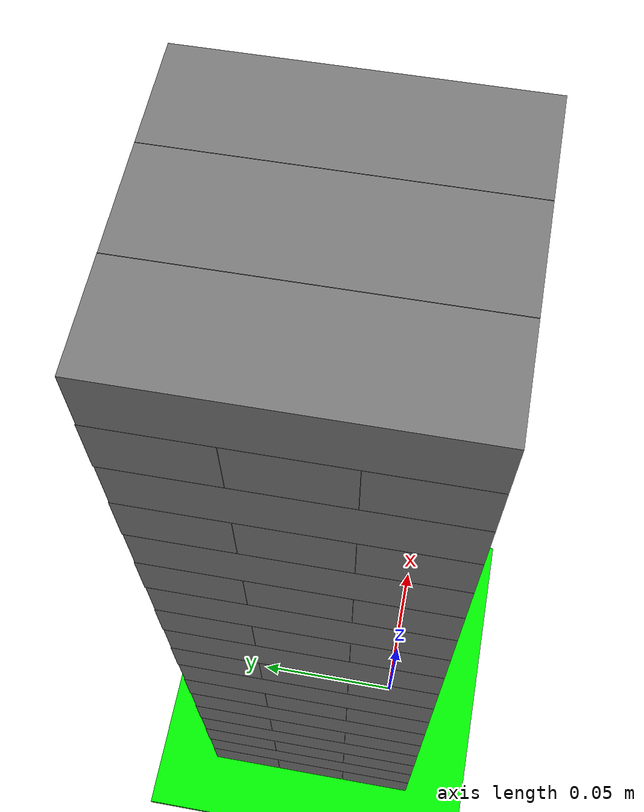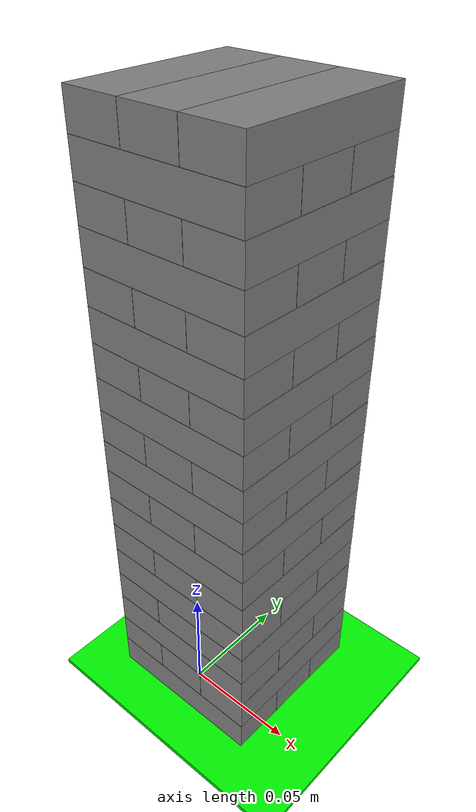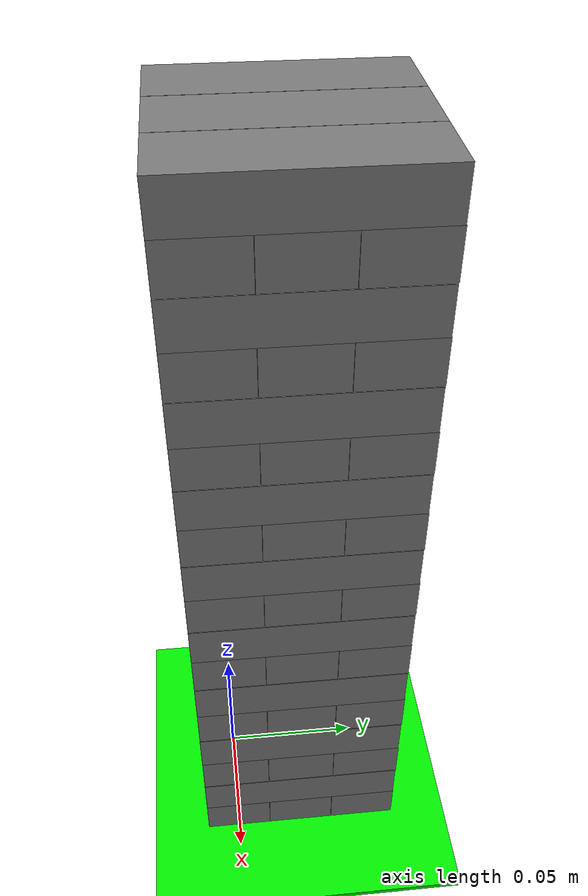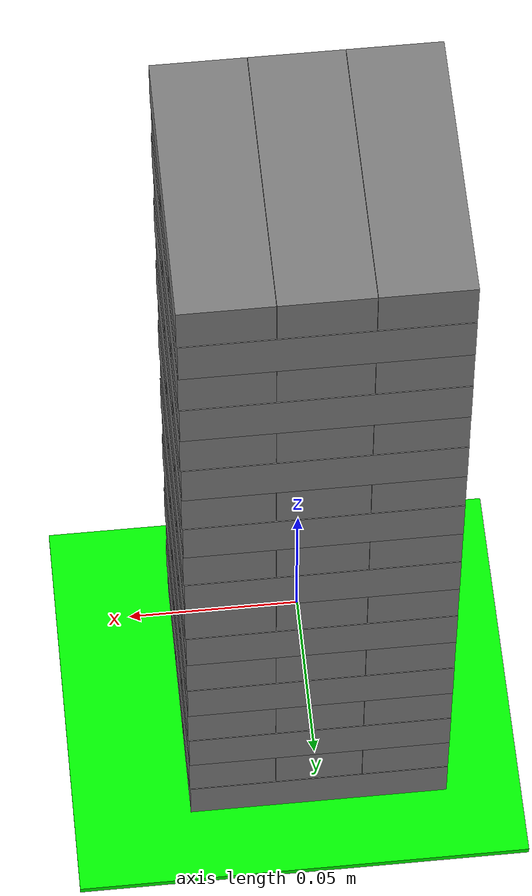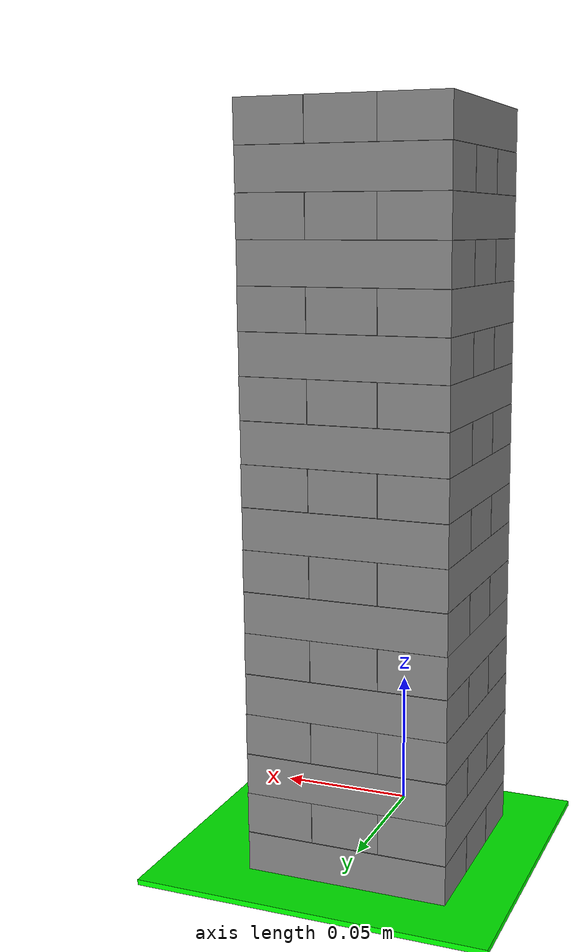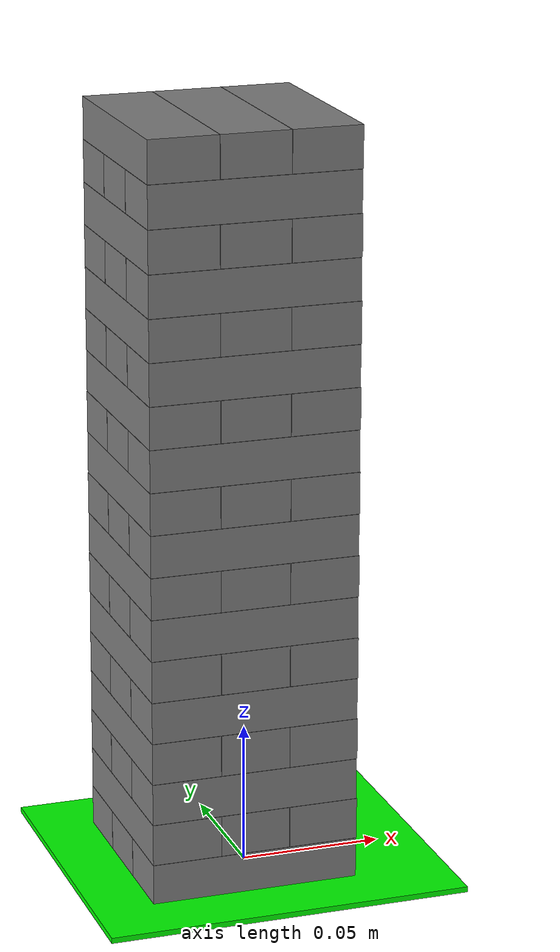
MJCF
<?xml version="1.0" ?>
<mujoco>
    <size njmax="8000" nconmax="4000"/>
    <worldbody>

    	<!--Layer 1 0.075 0.025 0.015-->
        <body name="box_0_0" pos="0 0 0">
            <joint type='free'/>
            <geom size="0.0375 0.0125 0.0075" type="box"/>
        </body>

        <body name="box_0_1" pos="0 0.0251 0">
            <joint type='free'/>
            <geom size="0.0375 0.0125 0.0075" type="box"/>
        </body>

        <body name="box_0_2" pos="0 0.0502 0">
            <joint type='free'/>
            <geom size="0.0375 0.0125 0.0075" type="box"/>
        </body>

        <!--Layer 2-->
        <body name="box_1_0" pos="-0.025 0.025 0.0151">
            <joint type='free'/>
            <geom size="0.0375 0.0125 0.0075" euler="0 0 90" type="box"/>
        </body>

        <body name="box_1_1" pos="0.0001 0.025 0.0151">
            <joint type='free'/>
            <geom size="0.0375 0.0125 0.0075" euler="0 0 90" type="box"/>
        </body>

        <body name="box_1_2" pos="0.0252 0.025 0.0151">
            <joint type='free'/>
            <geom size="0.0375 0.0125 0.0075" euler="0 0 90" type="box"/>
        </body>

        <!--Layer 3-->
        <body name="box_2_0" pos="0 0 0.0302">
            <joint type='free'/>
            <geom size="0.0375 0.0125 0.0075" type="box"/>
        </body>

        <body name="box_2_1" pos="0 0.0251 0.0302">
            <joint type='free'/>
            <geom size="0.0375 0.0125 0.0075" type="box"/>
        </body>

        <body name="box_2_2" pos="0 0.0502 0.0302">
            <joint type='free'/>
            <geom size="0.0375 0.0125 0.0075" type="box"/>
        </body>

        <!--Layer 4-->
        <body name="box_3_0" pos="-0.025 0.025 0.0453">
            <joint type='free'/>
            <geom size="0.0375 0.0125 0.0075" euler="0 0 90" type="box"/>
        </body>

        <body name="box_3_1" pos="0.0001 0.025 0.0453">
            <joint type='free'/>
            <geom size="0.0375 0.0125 0.0075" euler="0 0 90" type="box"/>
        </body>

        <body name="box_3_2" pos="0.0252 0.025 0.0453">
            <joint type='free'/>
            <geom size="0.0375 0.0125 0.0075" euler="0 0 90" type="box"/>
        </body>

        <!--Layer 5-->
        <body name="box_4_0" pos="0 0 0.0604">
            <joint type='free'/>
            <geom size="0.0375 0.0125 0.0075" type="box"/>
        </body>

        <body name="box_4_1" pos="0 0.0251 0.0604">
            <joint type='free'/>
            <geom size="0.0375 0.0125 0.0075" type="box"/>
        </body>

        <body name="box_4_2" pos="0 0.0502 0.0604">
            <joint type='free'/>
            <geom size="0.0375 0.0125 0.0075" type="box"/>
        </body>

        <!--Layer 6-->
        <body name="box_5_0" pos="-0.025 0.025 0.0755">
            <joint type='free'/>
            <geom size="0.0375 0.0125 0.0075" euler="0 0 90" type="box"/>
        </body>

        <body name="box_5_1" pos="0.0001 0.025 0.0755">
            <joint type='free'/>
            <geom size="0.0375 0.0125 0.0075" euler="0 0 90" type="box"/>
        </body>

        <body name="box_5_2" pos="0.0252 0.025 0.0755">
            <joint type='free'/>
            <geom size="0.0375 0.0125 0.0075" euler="0 0 90" type="box"/>
        </body>

        <!--Layer 7-->
        <body name="box_6_0" pos="0 0 0.0906">
            <joint type='free'/>
            <geom size="0.0375 0.0125 0.0075" type="box"/>
        </body>

        <body name="box_6_1" pos="0 0.0251 0.0906">
            <joint type='free'/>
            <geom size="0.0375 0.0125 0.0075" type="box"/>
        </body>

        <body name="box_6_2" pos="0 0.0502 0.0906">
            <joint type='free'/>
            <geom size="0.0375 0.0125 0.0075" type="box"/>
        </body>

        <!--Layer 8-->
        <body name="box_7_0" pos="-0.025 0.025 0.1057">
            <joint type='free'/>
            <geom size="0.0375 0.0125 0.0075" euler="0 0 90" type="box"/>
        </body>

        <body name="box_7_1" pos="0.0001 0.025 0.1057">
            <joint type='free'/>
            <geom size="0.0375 0.0125 0.0075" euler="0 0 90" type="box"/>
        </body>

        <body name="box_7_2" pos="0.0252 0.025 0.1057">
            <joint type='free'/>
            <geom size="0.0375 0.0125 0.0075" euler="0 0 90" type="box"/>
        </body>

        <!--Layer 9-->
        <body name="box_8_0" pos="0 0 0.1208">
            <joint type='free'/>
            <geom size="0.0375 0.0125 0.0075" type="box"/>
        </body>

        <body name="box_8_1" pos="0 0.0251 0.1208">
            <joint type='free'/>
            <geom size="0.0375 0.0125 0.0075" type="box"/>
        </body>

        <body name="box_8_2" pos="0 0.0502 0.1208">
            <joint type='free'/>
            <geom size="0.0375 0.0125 0.0075" type="box"/>
        </body>

        <!--Layer 10-->
        <body name="box_9_0" pos="-0.025 0.025 0.1359">
            <joint type='free'/>
            <geom size="0.0375 0.0125 0.0075" euler="0 0 90" type="box"/>
        </body>

        <body name="box_9_1" pos="0.0001 0.025 0.1359">
            <joint type='free'/>
            <geom size="0.0375 0.0125 0.0075" euler="0 0 90" type="box"/>
        </body>

        <body name="box_9_2" pos="0.0252 0.025 0.1359">
            <joint type='free'/>
            <geom size="0.0375 0.0125 0.0075" euler="0 0 90" type="box"/>
        </body>

        <!--Layer 11-->
        <body name="box_10_0" pos="0 0 0.151">
            <joint type='free'/>
            <geom size="0.0375 0.0125 0.0075" type="box"/>
        </body>

        <body name="box_10_1" pos="0 0.0251 0.151">
            <joint type='free'/>
            <geom size="0.0375 0.0125 0.0075" type="box"/>
        </body>

        <body name="box_10_2" pos="0 0.0502 0.151">
            <joint type='free'/>
            <geom size="0.0375 0.0125 0.0075" type="box"/>
        </body>

        <!--Layer 12-->
        <body name="box_11_0" pos="-0.025 0.025 0.1661">
            <joint type='free'/>
            <geom size="0.0375 0.0125 0.0075" euler="0 0 90" type="box"/>
        </body>

        <body name="box_11_1" pos="0.0001 0.025 0.1661">
            <joint type='free'/>
            <geom size="0.0375 0.0125 0.0075" euler="0 0 90" type="box"/>
        </body>

        <body name="box_11_2" pos="0.0252 0.025 0.1661">
            <joint type='free'/>
            <geom size="0.0375 0.0125 0.0075" euler="0 0 90" type="box"/>
        </body>

        <!--Layer 13-->
        <body name="box_12_0" pos="0 0 0.1812">
            <joint type='free'/>
            <geom size="0.0375 0.0125 0.0075" type="box"/>
        </body>

        <body name="box_12_1" pos="0 0.0251 0.1812">
            <joint type='free'/>
            <geom size="0.0375 0.0125 0.0075" type="box"/>
        </body>

        <body name="box_12_2" pos="0 0.0502 0.1812">
            <joint type='free'/>
            <geom size="0.0375 0.0125 0.0075" type="box"/>
        </body>

        <!--Layer 14-->
        <body name="box_13_0" pos="-0.025 0.025 0.1963">
            <joint type='free'/>
            <geom size="0.0375 0.0125 0.0075" euler="0 0 90" type="box"/>
        </body>

        <body name="box_13_1" pos="0.0001 0.025 0.1963">
            <joint type='free'/>
            <geom size="0.0375 0.0125 0.0075" euler="0 0 90" type="box"/>
        </body>

        <body name="box_13_2" pos="0.0252 0.025 0.1963">
            <joint type='free'/>
            <geom size="0.0375 0.0125 0.0075" euler="0 0 90" type="box"/>
        </body>

        <!--Layer 15-->
        <body name="box_14_0" pos="0 0 0.2114">
            <joint type='free'/>
            <geom size="0.0375 0.0125 0.0075" type="box"/>
        </body>

        <body name="box_14_1" pos="0 0.0251 0.2114">
            <joint type='free'/>
            <geom size="0.0375 0.0125 0.0075" type="box"/>
        </body>

        <body name="box_14_2" pos="0 0.0502 0.2114">
            <joint type='free'/>
            <geom size="0.0375 0.0125 0.0075" type="box"/>
        </body>

        <!--Layer 16-->
        <body name="box_15_0" pos="-0.025 0.025 0.2265">
            <joint type='free'/>
            <geom size="0.0375 0.0125 0.0075" euler="0 0 90" type="box"/>
        </body>

        <body name="box_15_1" pos="0.0001 0.025 0.2265">
            <joint type='free'/>
            <geom size="0.0375 0.0125 0.0075" euler="0 0 90" type="box"/>
        </body>

        <body name="box_15_2" pos="0.0252 0.025 0.2265">
            <joint type='free'/>
            <geom size="0.0375 0.0125 0.0075" euler="0 0 90" type="box"/>
        </body>

        <!--Layer 17-->
        <body name="box_16_0" pos="0 0 0.2416">
            <joint type='free'/>
            <geom size="0.0375 0.0125 0.0075" type="box"/>
        </body>

        <body name="box_16_1" pos="0 0.0251 0.2416">
            <joint type='free'/>
            <geom size="0.0375 0.0125 0.0075" type="box"/>
        </body>

        <body name="box_16_2" pos="0 0.0502 0.2416">
            <joint type='free'/>
            <geom size="0.0375 0.0125 0.0075" type="box"/>
        </body>

        <!--Layer 18-->
        <body name="box_17_0" pos="-0.025 0.025 0.2567">
            <joint type='free'/>
            <geom size="0.0375 0.0125 0.0075" euler="0 0 90" type="box"/>
        </body>

        <body name="box_17_1" pos="0.0001 0.025 0.2567">
            <joint type='free'/>
            <geom size="0.0375 0.0125 0.0075" euler="0 0 90" type="box"/>
        </body>

        <body name="box_17_2" pos="0.0252 0.025 0.2567">
            <joint type='free'/>
            <geom size="0.0375 0.0125 0.0075" euler="0 0 90" type="box"/>
        </body>

        <body name="floor" pos="0 0 -0.008">
            <geom size="1.0 1.0 0.001" rgba="0 1 0 1" type="box"/>
        </body>
    </worldbody>
</mujoco>
